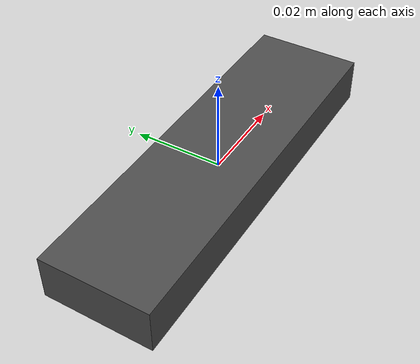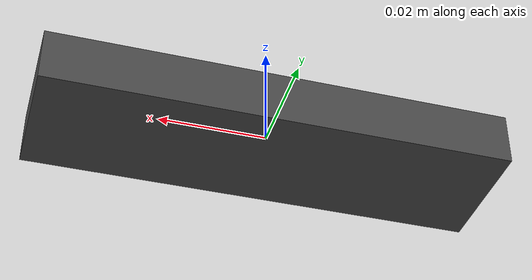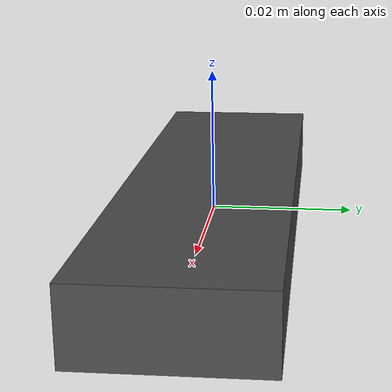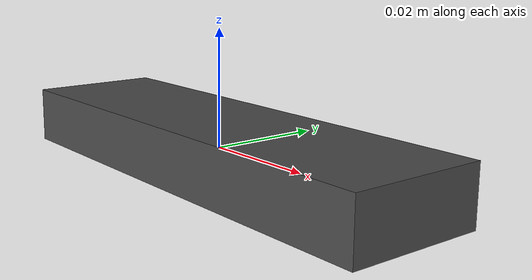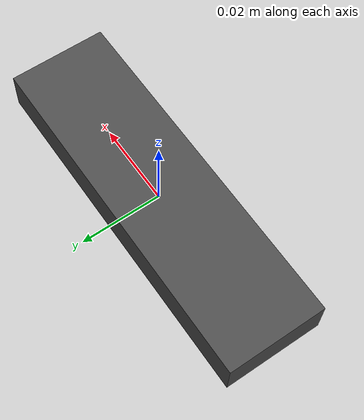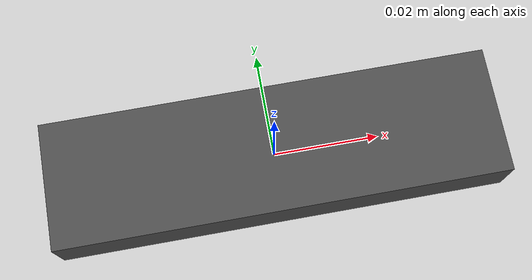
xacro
<?xml version="1.0"?>
<robot xmlns:xacro="http://www.ros.org/wiki/xacro" name="stereo_camera">

  <xacro:property name="M_PI" value="3.1415926535897931" />
  <xacro:property name="baseline" value="0.0152" /> <!-- 60mm -->
  <xacro:property name="camera_width" value="0.085" /> <!-- 85mm -->
  <xacro:property name="camera_height" value="0.024" /> <!-- 24mm -->

  <xacro:macro name="stereo_camera_macro" params="parent *origin">
    <!-- Base link -->
    <link name="camera_link">
      <visual>
        <geometry>
          <box size="${camera_width} ${camera_height} 0.01"/>
        </geometry>
        <material name="dark_grey">
          <color rgba="0.3 0.3 0.3 1"/>
        </material>
      </visual>
      <collision>
        <geometry>
          <box size="${camera_width} ${camera_height} 0.01"/>
        </geometry>
      </collision>
    </link>

    <!-- Left camera -->
    <link name="left_camera_optical_frame"/>
    <joint name="left_camera_joint" type="fixed">
      <parent link="camera_link"/>
      <child link="left_camera_optical_frame"/>
      <origin xyz="${-baseline/2} 0 0" rpy="${-M_PI / 2} 0 ${-M_PI / 2}"/> <!-- Translate from standard optical coordinate frame to ROS coordinate frame -->
    </joint>

    <!-- Right camera -->
    <link name="right_camera_optical_frame"/>
    <joint name="right_camera_joint" type="fixed">
      <parent link="camera_link"/>
      <child link="right_camera_optical_frame"/>
      <origin xyz="${baseline/2} 0 0" rpy="${-M_PI / 2} 0 ${-M_PI / 2}"/>  <!-- Translate from standard optical coordinate frame to ROS coordinate frame -->
    </joint>

    <!-- IMU -->
    <link name="imu_link"/>
    <joint name="imu_joint" type="fixed">
      <parent link="base_link"/>
      <child link="imu_link"/>
      <origin xyz="0 0 0" rpy="0 0 3.14159"/>
    </joint>

    <!-- Mount to parent -->
    <joint name="camera_mount_joint" type="fixed">
      <xacro:insert_block name="origin"/>
      <parent link="${parent}"/>
      <child link="camera_link"/>
    </joint>
  </xacro:macro>

  <!-- Create base link -->
  <link name="base_link"/>

  <!-- Instantiate the stereo camera -->
  <xacro:stereo_camera_macro parent="base_link">
    <origin xyz="0 0 0" rpy="0 0 0"/>
  </xacro:stereo_camera_macro>

</robot>
